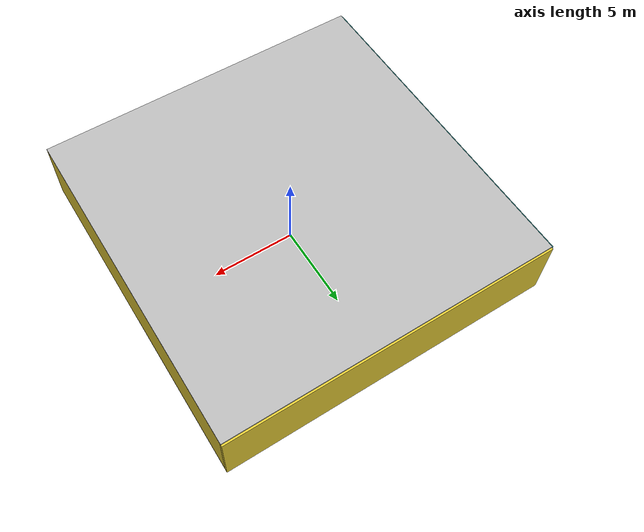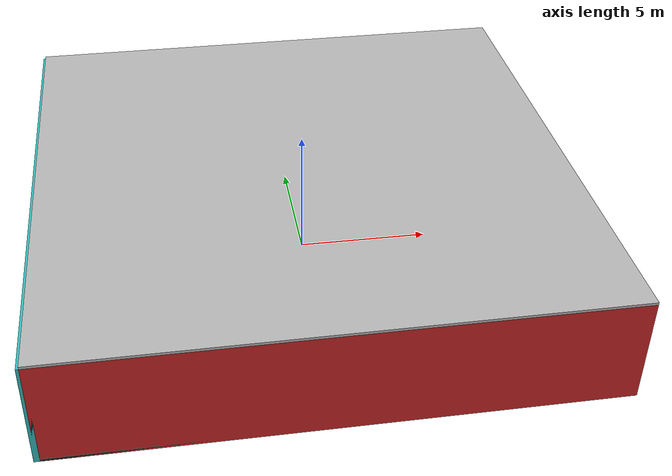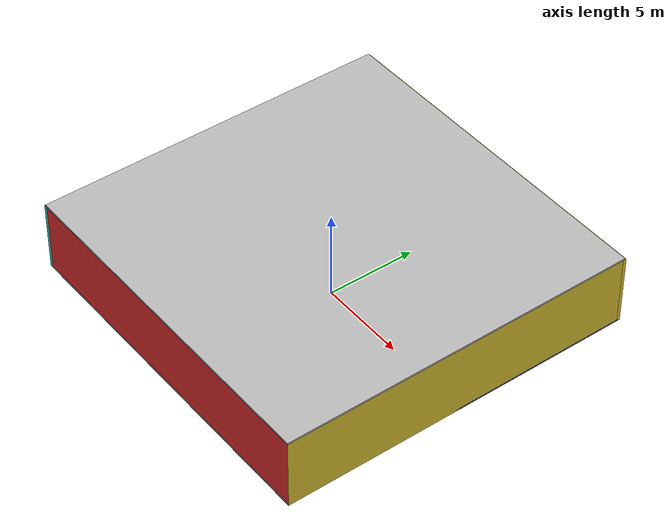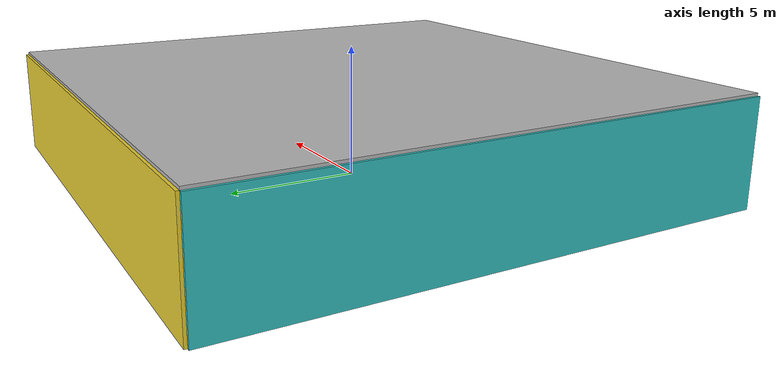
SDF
<sdf version="1.4">
 <world name="default">
  <physics type="ode">
   <max_step_size>0.001</max_step_size>
   <real_time_factor>1</real_time_factor>
   <real_time_update_rate>1000</real_time_update_rate>
   <gravity>0 0 -9.8</gravity>
  </physics>
  <scene><ambient>0.4 0.4 0.4 1</ambient><background>0.7 0.7 0.7 1</background><shadows>1</shadows></scene>
  <model name="Surrounding">
   <static>1</static>
   <link name="Ceiling">
    <collision name="Ceiling_Collision"><geometry><box><size>20 20 0.1</size></box></geometry></collision>
    <visual name="Ceiling_Visual">
     <geometry><box><size>20 20 0.1</size></box></geometry>
     <material>
      <script><uri>file://media/materials/scripts/gazebo.material</uri><name>Gazebo/Pioneer2Body</name></script>
     </material>
    </visual>
    <pose>0 0 4.05 0 0 0</pose>
   </link>
   <link name="Wall_South">
    <collision name="Wall_South_Collision">
     <geometry><box><size>20 0 4</size></box></geometry>
     <pose>0 0 2 0 -0 0</pose>
    </collision>
    <visual name="Wall_South_Visual">
     <pose>0 0 2 0 -0 0</pose>
     <geometry><box><size>20 0 4</size></box></geometry>
     <material>
      <script><uri>file://media/materials/scripts/gazebo.material</uri><name>Gazebo/RedBright</name></script>
     </material>
    </visual>
    <velocity_decay><linear>0</linear><angular>0</angular></velocity_decay>
    <pose>0 -10 0 0 -0 0</pose>
   </link>
   <link name="Wall_East">
    <collision name="Wall_21_Collision">
     <geometry><box><size>20 0 4</size></box></geometry>
     <pose>0 0 2 0 -0 0</pose>
    </collision>
    <visual name="Wall_21_Visual">
     <pose>0 0 2 0 -0 0</pose>
     <geometry><box><size>20 0 4</size></box></geometry>
     <material>
      <script><uri>file://media/materials/scripts/gazebo.material</uri><name>Gazebo/ZincYellow</name></script>
     </material>
    </visual>
    <velocity_decay><linear>0</linear><angular>0</angular></velocity_decay>
    <pose>10 0 0 0 -0 1.5708</pose>
   </link>
   <link name="Wall_North">
    <collision name="Wall_22_Collision">
     <geometry><box><size>20 0.2 4</size></box></geometry>
     <pose>0 0 2 0 -0 0</pose>
    </collision>
    <visual name="Wall_22_Visual">
     <pose>0 0 2 0 -0 0</pose>
     <geometry><box><size>20 0.2 4</size></box></geometry>
     <material>
      <script><uri>file://media/materials/scripts/gazebo.material</uri><name>Gazebo/ZincYellow</name></script>
     </material>
    </visual>
    <velocity_decay><linear>0</linear><angular>0</angular></velocity_decay>
    <pose>0 10 0 0 -0 0</pose>
   </link>
   <link name="Wall_West">
    <collision name="Wall_23_Collision">
     <geometry><box><size>20 0.2 4</size></box></geometry>
     <pose>0 0 2 0 -0 0</pose>
    </collision>
    <visual name="Wall_23_Visual">
     <pose>0 0 2 0 -0 0</pose>
     <geometry><box><size>20 0.2 4</size></box></geometry>
     <material>
      <script><uri>file://media/materials/scripts/gazebo.material</uri><name>Gazebo/TurquoiseGlow</name></script>
     </material>
    </visual>
    <velocity_decay><linear>0</linear><angular>0</angular></velocity_decay>
    <pose>-10 0 0 0 0 -1.5708</pose>
   </link>
   <link name="Ground_link">
    <collision name="collision">
     <pose>0 0 .05 0 -0 0</pose>
     <geometry><box><size>20 20 0.1</size></box></geometry>
    </collision>
    <visual name="visual">
     <pose>0 0 .05 0 -0 0</pose>
     <geometry><box><size>20 20 0.1</size></box></geometry>
     <material>
      <script><uri>file://media/materials/scripts/gazebo.material</uri><name>Gazebo/FlatBlack</name></script>
     </material>
    </visual>
   </link>
   <static>1</static>
  </model>
  <spherical_coordinates>
   <surface_model>EARTH_WGS84</surface_model>
   <latitude_deg>0</latitude_deg>
   <longitude_deg>0</longitude_deg>
   <elevation>0</elevation>
   <heading_deg>0</heading_deg>
  </spherical_coordinates>
  <light name="lightball_0" type="diffuse">
   <diffuse>0.8 0.8 0.8 1</diffuse>
   <specular>0.2 0.2 0.2 1</specular>
   <attenuation>
    <range>100</range>
    <constant>0.7</constant>
    <linear>0.01</linear>
    <quadratic>0.001</quadratic>
   </attenuation>
   <direction>-0.5 0.1 -0.9</direction>
   <pose>-3.12595417826 9.9812951955 2.00834295325 0 0 0</pose>
  </light>
  <light name="lightball_1" type="diffuse">
   <diffuse>0.8 0.8 0.8 1</diffuse>
   <specular>0.2 0.2 0.2 1</specular>
   <attenuation>
    <range>100</range>
    <constant>0.7</constant>
    <linear>0.01</linear>
    <quadratic>0.001</quadratic>
   </attenuation>
   <direction>-0.5 0.1 -0.9</direction>
   <pose>7.55585507975 -6.76885833696 2.20240966996 0 0 0</pose>
  </light>
  <light name="lightball_2" type="diffuse">
   <diffuse>0.8 0.8 0.8 1</diffuse>
   <specular>0.2 0.2 0.2 1</specular>
   <attenuation>
    <range>100</range>
    <constant>0.7</constant>
    <linear>0.01</linear>
    <quadratic>0.001</quadratic>
   </attenuation>
   <direction>-0.5 0.1 -0.9</direction>
   <pose>-4.73578826812 0.603225470559 2.96971944449 0 0 0</pose>
  </light>
  <light name="lightball_3" type="diffuse">
   <diffuse>0.8 0.8 0.8 1</diffuse>
   <specular>0.2 0.2 0.2 1</specular>
   <attenuation>
    <range>100</range>
    <constant>0.7</constant>
    <linear>0.01</linear>
    <quadratic>0.001</quadratic>
   </attenuation>
   <direction>-0.5 0.1 -0.9</direction>
   <pose>7.25610372759 -1.4982587855 1.35909276131 0 0 0</pose>
  </light>
  <light name="lightball_4" type="diffuse">
   <diffuse>0.8 0.8 0.8 1</diffuse>
   <specular>0.2 0.2 0.2 1</specular>
   <attenuation>
    <range>100</range>
    <constant>0.7</constant>
    <linear>0.01</linear>
    <quadratic>0.001</quadratic>
   </attenuation>
   <direction>-0.5 0.1 -0.9</direction>
   <pose>-4.4745665216 1.07881652384 3.02421389581 0 0 0</pose>
  </light>
  <light name="lightball_5" type="diffuse">
   <diffuse>0.8 0.8 0.8 1</diffuse>
   <specular>0.2 0.2 0.2 1</specular>
   <attenuation>
    <range>100</range>
    <constant>0.7</constant>
    <linear>0.01</linear>
    <quadratic>0.001</quadratic>
   </attenuation>
   <direction>-0.5 0.1 -0.9</direction>
   <pose>-9.91752368398 7.50767083866 2.2118024109 0 0 0</pose>
  </light>
  <light name="lightball_6" type="diffuse">
   <diffuse>0.8 0.8 0.8 1</diffuse>
   <specular>0.2 0.2 0.2 1</specular>
   <attenuation>
    <range>100</range>
    <constant>0.7</constant>
    <linear>0.01</linear>
    <quadratic>0.001</quadratic>
   </attenuation>
   <direction>-0.5 0.1 -0.9</direction>
   <pose>1.20440156107 -2.48299861121 1.00003915256 0 0 0</pose>
  </light>
  <light name="lightball_7" type="diffuse">
   <diffuse>0.8 0.8 0.8 1</diffuse>
   <specular>0.2 0.2 0.2 1</specular>
   <attenuation>
    <range>100</range>
    <constant>0.7</constant>
    <linear>0.01</linear>
    <quadratic>0.001</quadratic>
   </attenuation>
   <direction>-0.5 0.1 -0.9</direction>
   <pose>-5.16259510604 -5.35822955925 3.13862071654 0 0 0</pose>
  </light>
  <light name="lightball_8" type="diffuse">
   <diffuse>0.8 0.8 0.8 1</diffuse>
   <specular>0.2 0.2 0.2 1</specular>
   <attenuation>
    <range>100</range>
    <constant>0.7</constant>
    <linear>0.01</linear>
    <quadratic>0.001</quadratic>
   </attenuation>
   <direction>-0.5 0.1 -0.9</direction>
   <pose>-2.53879225227 0.657072175498 0.982191216215 0 0 0</pose>
  </light>
  <light name="lightball_9" type="diffuse">
   <diffuse>0.8 0.8 0.8 1</diffuse>
   <specular>0.2 0.2 0.2 1</specular>
   <attenuation>
    <range>100</range>
    <constant>0.7</constant>
    <linear>0.01</linear>
    <quadratic>0.001</quadratic>
   </attenuation>
   <direction>-0.5 0.1 -0.9</direction>
   <pose>4.26879034145 -4.76030290919 2.95780545228 0 0 0</pose>
  </light>
  <light name="lightball_10" type="diffuse">
   <diffuse>0.8 0.8 0.8 1</diffuse>
   <specular>0.2 0.2 0.2 1</specular>
   <attenuation>
    <range>100</range>
    <constant>0.7</constant>
    <linear>0.01</linear>
    <quadratic>0.001</quadratic>
   </attenuation>
   <direction>-0.5 0.1 -0.9</direction>
   <pose>6.30230726096 6.90731193688 1.60654237616 0 0 0</pose>
  </light>
  <light name="lightball_11" type="diffuse">
   <diffuse>0.8 0.8 0.8 1</diffuse>
   <specular>0.2 0.2 0.2 1</specular>
   <attenuation>
    <range>100</range>
    <constant>0.7</constant>
    <linear>0.01</linear>
    <quadratic>0.001</quadratic>
   </attenuation>
   <direction>-0.5 0.1 -0.9</direction>
   <pose>9.94504869115 2.30491353238 1.7967749238 0 0 0</pose>
  </light>
  <light name="lightball_12" type="diffuse">
   <diffuse>0.8 0.8 0.8 1</diffuse>
   <specular>0.2 0.2 0.2 1</specular>
   <attenuation>
    <range>100</range>
    <constant>0.7</constant>
    <linear>0.01</linear>
    <quadratic>0.001</quadratic>
   </attenuation>
   <direction>-0.5 0.1 -0.9</direction>
   <pose>3.57710226032 6.48890893878 1.57891168387 0 0 0</pose>
  </light>
  <light name="lightball_13" type="diffuse">
   <diffuse>0.8 0.8 0.8 1</diffuse>
   <specular>0.2 0.2 0.2 1</specular>
   <attenuation>
    <range>100</range>
    <constant>0.7</constant>
    <linear>0.01</linear>
    <quadratic>0.001</quadratic>
   </attenuation>
   <direction>-0.5 0.1 -0.9</direction>
   <pose>9.39504742152 2.1696202941 1.56806407381 0 0 0</pose>
  </light>
  <include><uri>model://cabinet</uri><pose>-7.5747764388 2.06964155423 0 0 0 1.59512974009</pose></include>
  <include><uri>model://cabinet</uri><pose>-6.36292255759 8.25528440366 0 0 0 2.60492083155</pose></include>
  <include>
   <uri>model://robocup_3Dsim_goal</uri>
   <pose>-5.13678063044 6.53265115772 0 0 0 1.40774811505</pose>
  </include>
  <include>
   <uri>model://textured_shapes</uri>
   <pose>-0.470314185472 -7.6188840684 0 0 0 0.761537790898</pose>
  </include>
  <include><uri>model://table</uri><pose>-0.594474283548 5.03441436868 0 0 0 0.149348807126</pose></include>
  <include><uri>model://cabinet</uri><pose>-1.21851895548 6.32047267654 0 0 0 2.72567931395</pose></include>
  <include><uri>model://cabinet</uri><pose>1.81436745094 0.311661722344 0 0 0 2.83757878628</pose></include>
  <include><uri>model://cabinet</uri><pose>6.58842406136 -4.85617433738 0 0 0 1.89582944027</pose></include>
 </world>
</sdf>

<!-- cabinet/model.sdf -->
<sdf version="1.5">
  <model name="cabinet">
    <static>true</static>
    <link name="cabinet_bottom_plate">
      <inertial>
        <pose>0 0 -1 0 0 0</pose>
        <inertia>
          <ixx>2.050000</ixx>
          <ixy>0</ixy>
          <ixz>0</ixz>
          <iyy>2.050000</iyy>
          <iyz>0</iyz>
          <izz>2.050000</izz>
        </inertia>
        <mass>25.000000</mass>
      </inertial>
      <collision name="cabinet_bottom_plate_geom">
        <pose>0 0 0.010000 0 0 0</pose>
        <geometry>
          <box>
            <size>0.450000 0.450000 0.020000</size>
          </box>
        </geometry>
      </collision>
      <visual name="cabinet_bottom_plate_geom_visual">
        <pose>0 0 0.010000 0 0 0</pose>
        <geometry>
          <box>
            <size>0.450000 0.450000 0.020000</size>
          </box>
        </geometry>
        <material>
          <script>
            <uri>model://media/materials/scripts/gazebo.material</uri>
            <name>Gazebo/Wood</name>
          </script>
        </material>
      </visual>
      <collision name="cabinet_bottom_plate_geom_cabinet_back_plate">
        <pose>0.235000 0 0.510000 0 0 0</pose>
        <geometry>
          <box>
            <size>0.020000 0.450000 1.020000</size>
          </box>
        </geometry>
      </collision>
      <visual name="cabinet_bottom_plate_geom_cabinet_back_plate_visual">
        <pose>0.235000 0 0.510000 0 0 0</pose>
        <geometry>
          <box>
            <size>0.020000 0.450000 1.020000</size>
          </box>
        </geometry>
        <material>
          <script>
            <uri>model://media/materials/scripts/gazebo.material</uri>
            <name>Gazebo/Wood</name>
          </script>
        </material>
      </visual>
      <collision name="cabinet_bottom_plate_geom_cabinet_left_plate">
        <pose>0 0.235000 0.510000 0 0 0</pose>
        <geometry>
          <box>
            <size>0.450000 0.020000 1.020000</size>
          </box>
        </geometry>
      </collision>
      <visual name="cabinet_bottom_plate_geom_cabinet_left_plate_visual">
        <pose>0 0.235000 0.510000 0 0 0</pose>
        <geometry>
          <box>
            <size>0.450000 0.020000 1.020000</size>
          </box>
        </geometry>
        <material>
          <script>
            <uri>model://media/materials/scripts/gazebo.material</uri>
            <name>Gazebo/Wood</name>
          </script>
        </material>
      </visual>
      <collision name="cabinet_bottom_plate_geom_cabinet_middle_plate">
        <pose>0 0 0.510000 0 0 0</pose>
        <geometry>
          <box>
            <size>0.450000 0.450000 0.020000</size>
          </box>
        </geometry>
      </collision>
      <visual name="cabinet_bottom_plate_geom_cabinet_middle_plate_visual">
        <pose>0 0 0.510000 0 0 0</pose>
        <geometry>
          <box>
            <size>0.450000 0.450000 0.020000</size>
          </box>
        </geometry>
        <material>
          <script>
            <uri>model://media/materials/scripts/gazebo.material</uri>
            <name>Gazebo/Wood</name>
          </script>
        </material>
      </visual>
      <collision name="cabinet_bottom_plate_geom_cabinet_right_plate">
        <pose>0 -0.235000 0.510000 0 0 0</pose>
        <geometry>
          <box>
            <size>0.450000 0.020000 1.020000</size>
          </box>
        </geometry>
      </collision>
      <visual name="cabinet_bottom_plate_geom_cabinet_right_plate_visual">
        <pose>0 -0.235000 0.510000 0 0 0</pose>
        <geometry>
          <box>
            <size>0.450000 0.020000 1.020000</size>
          </box>
        </geometry>
        <material>
          <script>
            <uri>model://media/materials/scripts/gazebo.material</uri>
            <name>Gazebo/Wood</name>
          </script>
        </material>
      </visual>
      <collision name="cabinet_bottom_plate_geom_cabinet_top_plate">
        <pose>0 0 1.010000 0 0 0</pose>
        <geometry>
          <box>
            <size>0.450000 0.450000 0.020000</size>
          </box>
        </geometry>
      </collision>
      <visual name="cabinet_bottom_plate_geom_cabinet_top_plate_visual">
        <pose>0 0 1.010000 0 0 0</pose>
        <geometry>
          <box>
            <size>0.450000 0.450000 0.020000</size>
          </box>
        </geometry>
        <material>
          <script>
            <uri>model://media/materials/scripts/gazebo.material</uri>
            <name>Gazebo/Wood</name>
          </script>
        </material>
      </visual>
    </link>
  </model>
</sdf>

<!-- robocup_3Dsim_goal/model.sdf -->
<sdf version="1.5">
  <model name="robocup_3d_goal">
    <static>true</static>
    <link name="left_post">
      <pose>0 1.05 0.45 0 0 0</pose>
      <collision name="collision">
        <geometry>
          <cylinder>
            <radius>0.05</radius>
            <length>0.9</length>
          </cylinder>
        </geometry>
      </collision>
      <visual name="visual">
        <geometry>
          <cylinder>
            <radius>0.05</radius>
            <length>0.9</length>
          </cylinder>
        </geometry>
        <material>
          <script>
            <uri>file://media/materials/scripts/gazebo.material</uri>
            <name>Gazebo/ZincYellow</name>
          </script>
        </material>
      </visual>
    </link>
    <link name="left_support_horiz_lower">
      <pose>0.30 1.05 0.01 0 0 0</pose>
      <collision name="collision">
        <geometry>
          <box>
            <size>0.50 0.02 0.02</size>
          </box>
        </geometry>
      </collision>
      <visual name="visual">
        <geometry>
          <box>
            <size>0.50 0.02 0.02</size>
          </box>
        </geometry>
        <material>
          <script>
            <uri>file://media/materials/scripts/gazebo.material</uri>
            <name>Gazebo/White</name>
          </script>
        </material>
      </visual>
    </link>
    <link name="left_support_horiz_upper">
      <pose>0.30 1.05 0.79 0 0 0</pose>
      <collision name="collision">
        <geometry>
          <box>
            <size>0.50 0.02 0.02</size>
          </box>
        </geometry>
      </collision>
      <visual name="visual">
        <geometry>
          <box>
            <size>0.50 0.02 0.02</size>
          </box>
        </geometry>
        <material>
          <script>
            <uri>file://media/materials/scripts/gazebo.material</uri>
            <name>Gazebo/White</name>
          </script>
        </material>
      </visual>
    </link>
    <link name="left_support_vertical">
      <pose>0.56 1.05 0.4 0 1.5708 0</pose>
      <collision name="collision">
        <geometry>
          <box>
            <size>0.80 0.02 0.02</size>
          </box>
        </geometry>
      </collision>
      <visual name="visual">
        <geometry>
          <box>
            <size>0.80 0.02 0.02</size>
          </box>
        </geometry>
        <material>
          <script>
            <uri>file://media/materials/scripts/gazebo.material</uri>
            <name>Gazebo/White</name>
          </script>
        </material>
      </visual>
    </link>
    <link name="right_support_horiz_lower">
      <pose>0.30 -1.05 0.01 0 0 0</pose>
      <collision name="collision">
        <geometry>
          <box>
            <size>0.50 0.02 0.02</size>
          </box>
        </geometry>
      </collision>
      <visual name="visual">
        <geometry>
          <box>
            <size>0.50 0.02 0.02</size>
          </box>
        </geometry>
        <material>
          <script>
            <uri>file://media/materials/scripts/gazebo.material</uri>
            <name>Gazebo/White</name>
          </script>
        </material>
      </visual>
    </link>
    <link name="right_support_horiz_upper">
      <pose>0.30 -1.05 0.79 0 0 0</pose>
      <collision name="collision">
        <geometry>
          <box>
            <size>0.50 0.02 0.02</size>
          </box>
        </geometry>
      </collision>
      <visual name="visual">
        <geometry>
          <box>
            <size>0.50 0.02 0.02</size>
          </box>
        </geometry>
        <material>
          <script>
            <uri>file://media/materials/scripts/gazebo.material</uri>
            <name>Gazebo/White</name>
          </script>
        </material>
      </visual>
    </link>
    <link name="right_support_vertical">
      <pose>0.56 -1.05 0.4 0 1.5708 0</pose>
      <collision name="collision">
        <geometry>
          <box>
            <size>0.80 0.02 0.02</size>
          </box>
        </geometry>
      </collision>
      <visual name="visual">
        <geometry>
          <box>
            <size>0.80 0.02 0.02</size>
          </box>
        </geometry>
        <material>
          <script>
            <uri>file://media/materials/scripts/gazebo.material</uri>
            <name>Gazebo/White</name>
          </script>
        </material>
      </visual>
    </link>
    <link name="center_support_horiz_lower">
      <pose>0.56 0 0.01 0 1.5708 0</pose>
      <collision name="collision">
        <geometry>
          <box>
            <size>0.02 2.08 0.02</size>
          </box>
        </geometry>
      </collision>
      <visual name="visual">
        <geometry>
          <box>
            <size>0.02 2.08 0.02</size>
          </box>
        </geometry>
        <material>
          <script>
            <uri>file://media/materials/scripts/gazebo.material</uri>
            <name>Gazebo/White</name>
          </script>
        </material>
      </visual>
    </link>
    <link name="center_support_horiz_upper">
      <pose>0.56 0 0.79 0 1.5708 0</pose>
      <collision name="collision">
        <geometry>
          <box>
            <size>0.02 2.08 0.02</size>
          </box>
        </geometry>
      </collision>
      <visual name="visual">
        <geometry>
          <box>
            <size>0.02 2.08 0.02</size>
          </box>
        </geometry>
        <material>
          <script>
            <uri>file://media/materials/scripts/gazebo.material</uri>
            <name>Gazebo/White</name>
          </script>
        </material>
      </visual>
    </link>
    <link name="right_post">
      <pose>0 -1.05 0.45 0 0 0</pose>
      <collision name="collision">
        <geometry>
          <cylinder>
            <radius>0.05</radius>
            <length>0.9</length>
          </cylinder>
        </geometry>
      </collision>
      <visual name="visual">
        <geometry>
          <cylinder>
            <radius>0.05</radius>
            <length>0.9</length>
          </cylinder>
        </geometry>
        <material>
          <script>
            <uri>file://media/materials/scripts/gazebo.material</uri>
            <name>Gazebo/ZincYellow</name>
          </script>
        </material>
      </visual>
    </link>
    <link name="crossbar">
      <pose>0 0 0.85 1.57 1.57 0</pose>
      <collision name="collision">
        <geometry>
          <cylinder>
            <radius>0.05</radius>
            <length>2.0</length>
          </cylinder>
        </geometry>
      </collision>
      <visual name="visual">
        <geometry>
          <cylinder>
            <radius>0.05</radius>
            <length>2.0</length>
          </cylinder>
        </geometry>
        <material>
          <script>
            <uri>file://media/materials/scripts/gazebo.material</uri>
            <name>Gazebo/ZincYellow</name>
          </script>
        </material>
      </visual>
    </link>
    <link name="center_net">
      <pose>0.56 0 0.40 0 0 0</pose>
      <collision name="collision">
        <geometry>
          <box>
            <size>0.01 2.1 0.80</size>
          </box>
        </geometry>
      </collision>
      <visual name="visual">
        <geometry>
          <box>
            <size>0.01 2.1 0.80</size>
          </box>
        </geometry>
        <material>
          <script>
            <uri>model://../model_source/models/robocup09_spl_field/materials/scripts/</uri>
            <uri>model://../model_source/models/robocup09_spl_field/materials/textures/</uri>
            <name>RoboCup/Net</name>
          </script>
        </material>
      </visual>
    </link>
    <link name="left_net">
      <pose>0.30 1.05 0.40 0 0 0</pose>
      <collision name="collision">
        <geometry>
          <box>
            <size>0.50 0.01 0.76</size>
          </box>
        </geometry>
      </collision>
      <visual name="visual">
        <geometry>
          <box>
            <size>0.50 0.01 0.76</size>
          </box>
        </geometry>
        <material>
          <script>
            <uri>model://../model_source/models/robocup09_spl_field/materials/scripts/</uri>
            <uri>model://../model_source/models/robocup09_spl_field/materials/textures/</uri>
            <name>RoboCup/Net</name>
          </script>
        </material>
      </visual>
    </link>
    <link name="right_net">
      <pose>0.30 -1.05 0.40 0 0 0</pose>
      <collision name="collision">
        <geometry>
          <box>
            <size>0.50 0.01 0.76</size>
          </box>
        </geometry>
      </collision>
      <visual name="visual">
        <geometry>
          <box>
            <size>0.50 0.01 0.76</size>
          </box>
        </geometry>
        <material>
          <script>
            <uri>model://../model_source/models/robocup09_spl_field/materials/scripts/</uri>
            <uri>model://../model_source/models/robocup09_spl_field/materials/textures/</uri>
            <name>RoboCup/Net</name>
          </script>
        </material>
      </visual>
    </link>
  </model>
</sdf>

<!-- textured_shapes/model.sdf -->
<sdf version="1.6">
  <model name="textured_shapes">
    <pose>0 0 0.5 0 0 0</pose>
    <link name="box">
      <pose>0 -1.5 0 0 0 0</pose>
      <collision name="collision">
        <geometry>
          <box>
            <size>1 1 1</size>
          </box>
        </geometry>
      </collision>
      <visual name="visual">
        <geometry>
          <box>
            <size>1 1 1</size>
          </box>
        </geometry>
        <material>
          <script>
            <uri>model://../model_source/models/textured_shapes/materials/scripts</uri>
            <uri>model://../model_source/models/textured_shapes/materials/textures</uri>
            <name>TexturedShape/Squares</name>
          </script>
        </material>
      </visual>
    </link>
    <link name="sphere">
      <collision name="collision">
        <geometry>
          <sphere>
            <radius>0.5</radius>
          </sphere>
        </geometry>
      </collision>
      <visual name="visual">
        <geometry>
          <sphere>
            <radius>0.5</radius>
          </sphere>
        </geometry>
        <material>
          <script>
            <uri>model://../model_source/models/textured_shapes/materials/scripts</uri>
            <uri>model://../model_source/models/textured_shapes/materials/textures</uri>
            <name>TexturedShape/Squares</name>
          </script>
        </material>
      </visual>
    </link>
    <link name="cylinder">
      <pose>0 1.5 0 0 0 0</pose>
      <collision name="collision">
        <geometry>
          <cylinder>
            <radius>0.5</radius>
            <length>1</length>
          </cylinder>
        </geometry>
      </collision>
      <visual name="visual">
        <geometry>
          <cylinder>
            <radius>0.5</radius>
            <length>1</length>
          </cylinder>
        </geometry>
        <material>
          <script>
            <uri>model://../model_source/models/textured_shapes/materials/scripts</uri>
            <uri>model://../model_source/models/textured_shapes/materials/textures</uri>
            <name>TexturedShape/Squares</name>
          </script>
        </material>
      </visual>
    </link>
  </model>
</sdf>

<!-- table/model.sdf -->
<sdf version="1.5">
  <model name="table">
    <static>true</static>
    <link name="link">
      <collision name="surface">
        <pose>0 0 1.0 0 0 0</pose>
        <geometry>
          <box>
            <size>1.5 0.8 0.03</size>
          </box>
        </geometry>
        <surface>
          <friction>
            <ode>
              <mu>0.6</mu>
              <mu2>0.6</mu2>
            </ode>
          </friction>
        </surface>
      </collision>
      <visual name="visual1">
        <pose>0 0 1.0 0 0 0</pose>
        <geometry>
          <box>
            <size>1.5 0.8 0.03</size>
          </box>
        </geometry>
        <material>
          <script>
            <uri>model://media/materials/scripts/gazebo.material</uri>
            <name>Gazebo/Wood</name>
          </script>
        </material>
      </visual>
      <collision name="front_left_leg">
        <pose>0.68 0.38 0.5 0 0 0</pose>
        <geometry>
          <cylinder>
            <radius>0.02</radius>
            <length>1.0</length>
          </cylinder>
        </geometry>
      </collision>
      <visual name="front_left_leg">
        <pose>0.68 0.38 0.5 0 0 0</pose>
        <geometry>
          <cylinder>
            <radius>0.02</radius>
            <length>1.0</length>
          </cylinder>
        </geometry>
        <material>
          <script>
            <uri>model://media/materials/scripts/gazebo.material</uri>
            <name>Gazebo/Grey</name>
          </script>
        </material>
      </visual>
      <collision name="front_right_leg">
        <pose>0.68 -0.38 0.5 0 0 0</pose>
        <geometry>
          <cylinder>
            <radius>0.02</radius>
            <length>1.0</length>
          </cylinder>
        </geometry>
      </collision>
      <visual name="front_right_leg">
        <pose>0.68 -0.38 0.5 0 0 0</pose>
        <geometry>
          <cylinder>
            <radius>0.02</radius>
            <length>1.0</length>
          </cylinder>
        </geometry>
        <material>
          <script>
            <uri>model://media/materials/scripts/gazebo.material</uri>
            <name>Gazebo/Grey</name>
          </script>
        </material>
      </visual>
      <collision name="back_right_leg">
        <pose>-0.68 -0.38 0.5 0 0 0</pose>
        <geometry>
          <cylinder>
            <radius>0.02</radius>
            <length>1.0</length>
          </cylinder>
        </geometry>
      </collision>
      <visual name="back_right_leg">
        <pose>-0.68 -0.38 0.5 0 0 0</pose>
        <geometry>
          <cylinder>
            <radius>0.02</radius>
            <length>1.0</length>
          </cylinder>
        </geometry>
        <material>
          <script>
            <uri>model://media/materials/scripts/gazebo.material</uri>
            <name>Gazebo/Grey</name>
          </script>
        </material>
      </visual>
      <collision name="back_left_leg">
        <pose>-0.68 0.38 0.5 0 0 0</pose>
        <geometry>
          <cylinder>
            <radius>0.02</radius>
            <length>1.0</length>
          </cylinder>
        </geometry>
      </collision>
      <visual name="back_left_leg">
        <pose>-0.68 0.38 0.5 0 0 0</pose>
        <geometry>
          <cylinder>
            <radius>0.02</radius>
            <length>1.0</length>
          </cylinder>
        </geometry>
        <material>
          <script>
            <uri>model://media/materials/scripts/gazebo.material</uri>
            <name>Gazebo/Grey</name>
          </script>
        </material>
      </visual>
    </link>
  </model>
</sdf>
